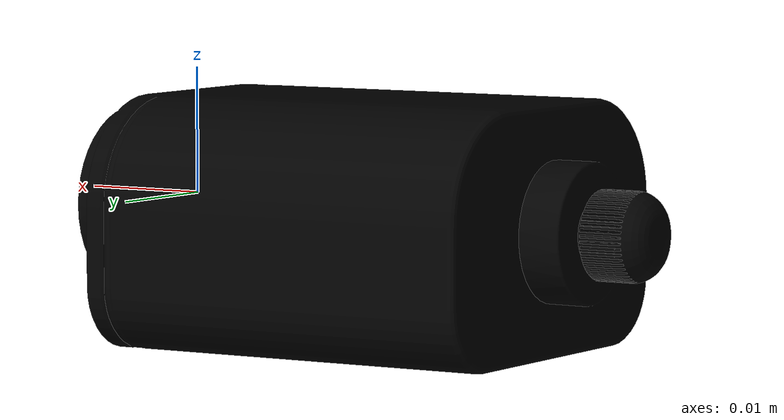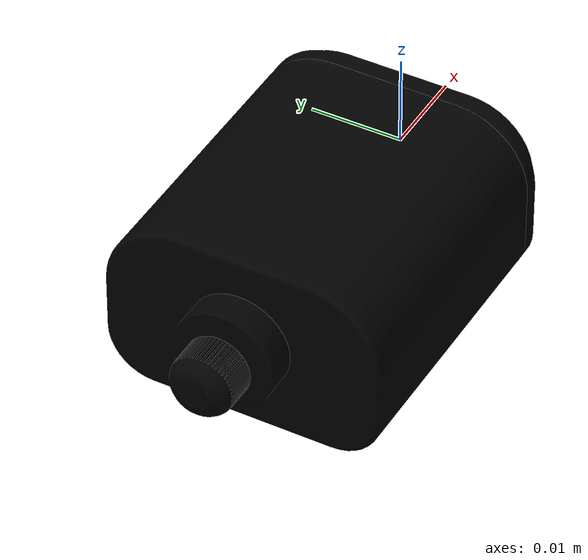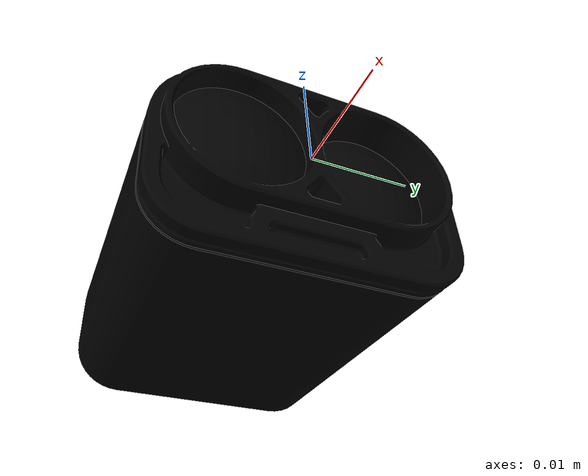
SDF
<?xml version="1.0" ?>
<sdf version="1.6">
  <model name="LW20">
    <link name="lw20_link">
      <pose>0 0 0 0 0 0</pose>
      <inertial>
        <pose>0 0 0 0 0 0</pose>
        <mass>0.02</mass>
        <inertia>
          <ixx>0.000004</ixx>
          <ixy>0</ixy>
          <ixz>0</ixz>
          <iyy>0.000004</iyy>
          <iyz>0</iyz>
          <izz>0.000002</izz>
        </inertia>
      </inertial>
      <collision name="collision_base">
        <pose>0 0 0 0 0 0</pose>
        <geometry>
          <box>
            <size>0.03 0.02 0.043</size>
          </box>
        </geometry>
      </collision>
      <visual name="visual">
        <geometry>
          <mesh>
            <uri>model://LW20/meshes/LW20.dae</uri>
          </mesh>
        </geometry>
      </visual>
    </link>
  </model>
</sdf>
